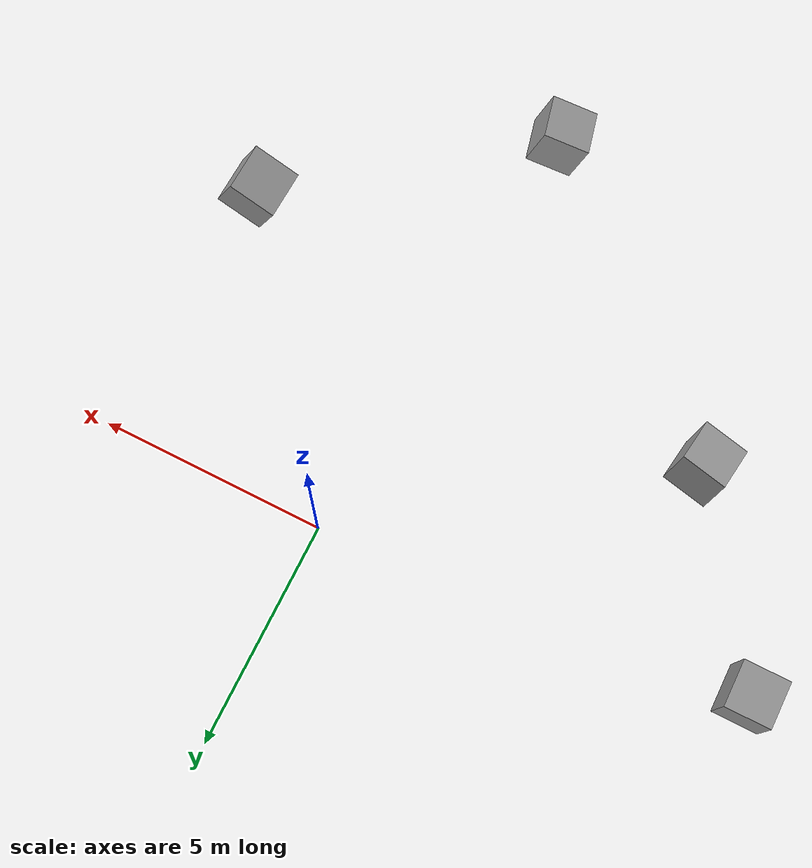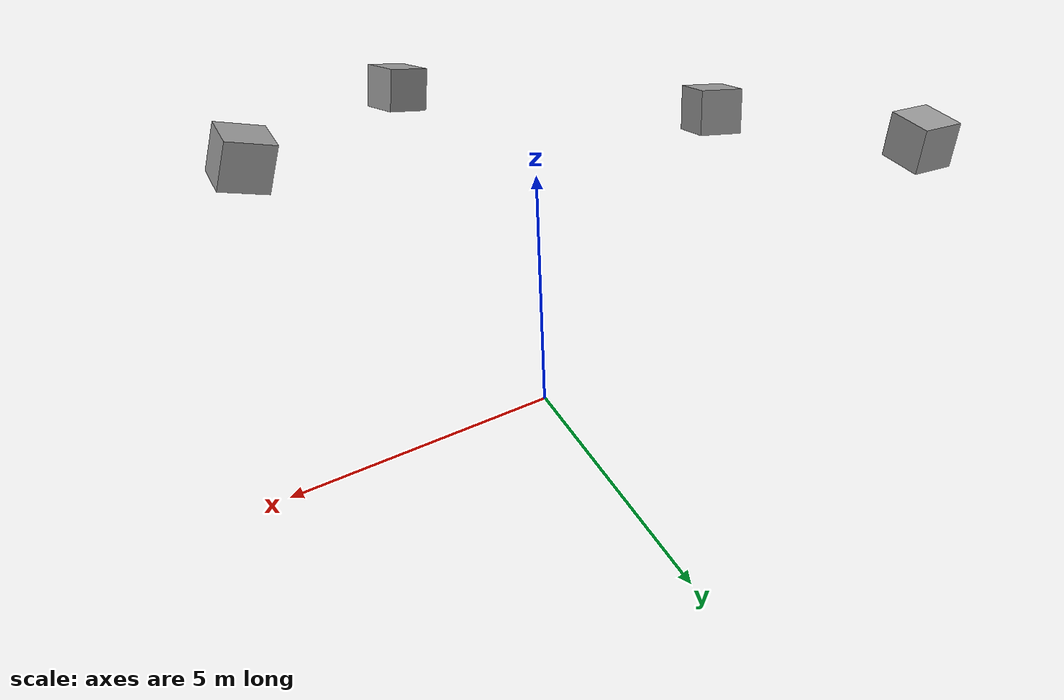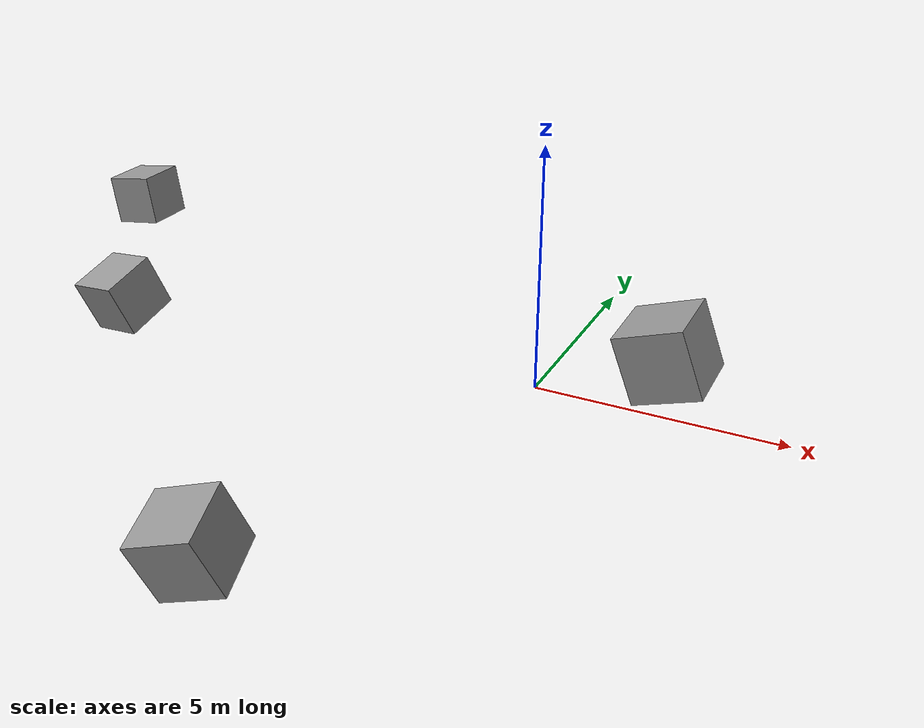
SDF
<sdf version="1.6">
 <world name="default">
  <light name="sun" type="directional">
   <pose>0 0 10 0 -0 0</pose>
   <diffuse>0.8 0.8 0.8 1</diffuse>
   <specular>0.2 0.2 0.2 1</specular>
   <attenuation>
    <range>1000</range>
    <constant>0.9</constant>
    <linear>0.01</linear>
    <quadratic>0.001</quadratic>
   </attenuation>
   <direction>-0.5 0.1 -0.9</direction>
  </light>
  <gravity>0 0 -9.8</gravity>
  <magnetic_field>6e-06 2.3e-05 -4.2e-05</magnetic_field>
  <atmosphere type="adiabatic"/>
  <physics name="default_physics" default="0" type="ode">
   <max_step_size>0.001</max_step_size>
   <real_time_factor>1</real_time_factor>
   <real_time_update_rate>1000</real_time_update_rate>
  </physics>
  <scene><ambient>0.4 0.4 0.4 1</ambient><background>0.7 0.7 0.7 1</background><shadows>1</shadows></scene>
  <audio><device>default</device></audio>
  <spherical_coordinates>
   <surface_model>EARTH_WGS84</surface_model>
   <latitude_deg>0</latitude_deg>
   <longitude_deg>0</longitude_deg>
   <elevation>0</elevation>
   <heading_deg>0</heading_deg>
  </spherical_coordinates>
  <model name="unit_box">
   <pose>3.7202 -4.92345 3.89335 0.227716 1.22186 0.177919</pose>
   <link name="link">
    <inertial>
     <mass>1</mass>
     <inertia>
      <ixx>0.166667</ixx>
      <ixy>0</ixy>
      <ixz>0</ixz>
      <iyy>0.166667</iyy>
      <iyz>0</iyz>
      <izz>0.166667</izz>
     </inertia>
    </inertial>
    <collision name="collision"><geometry><box><size>1 1 1</size></box></geometry></collision>
    <visual name="visual">
     <geometry><box><size>1 1 1</size></box></geometry>
     <material>
      <script><name>Gazebo/Grey</name><uri>file://media/materials/scripts/gazebo.material</uri></script>
     </material>
    </visual>
   </link>
  </model>
  <model name="unit_box_0">
   <pose>-0.958498 -9.29083 2.16166 0.639414 1.19608 0.850171</pose>
   <link name="link">
    <inertial>
     <mass>1</mass>
     <inertia>
      <ixx>0.166667</ixx>
      <ixy>0</ixy>
      <ixz>0</ixz>
      <iyy>0.166667</iyy>
      <iyz>0</iyz>
      <izz>0.166667</izz>
     </inertia>
    </inertial>
    <collision name="collision"><geometry><box><size>1 1 1</size></box></geometry></collision>
    <visual name="visual">
     <geometry><box><size>1 1 1</size></box></geometry>
     <material>
      <script><name>Gazebo/Grey</name><uri>file://media/materials/scripts/gazebo.material</uri></script>
     </material>
    </visual>
   </link>
  </model>
  <model name="unit_box_1">
   <pose>-6.55959 -4.20369 2.45095 1.901 -0.138138 -0.162796</pose>
   <link name="link">
    <inertial>
     <mass>1</mass>
     <inertia>
      <ixx>0.166667</ixx>
      <ixy>0</ixy>
      <ixz>0</ixz>
      <iyy>0.166667</iyy>
      <iyz>0</iyz>
      <izz>0.166667</izz>
     </inertia>
    </inertial>
    <collision name="collision"><geometry><box><size>1 1 1</size></box></geometry></collision>
    <visual name="visual">
     <geometry><box><size>1 1 1</size></box></geometry>
     <material>
      <script><name>Gazebo/Grey</name><uri>file://media/materials/scripts/gazebo.material</uri></script>
     </material>
    </visual>
   </link>
  </model>
  <model name="unit_box_2">
   <pose>-9.24625 -0.358143 2.82476 0.022829 -0.114824 0.024742</pose>
   <link name="link">
    <inertial>
     <mass>1</mass>
     <inertia>
      <ixx>0.166667</ixx>
      <ixy>0</ixy>
      <ixz>0</ixz>
      <iyy>0.166667</iyy>
      <iyz>0</iyz>
      <izz>0.166667</izz>
     </inertia>
    </inertial>
    <collision name="collision"><geometry><box><size>1 1 1</size></box></geometry></collision>
    <visual name="visual">
     <geometry><box><size>1 1 1</size></box></geometry>
     <material>
      <script><name>Gazebo/Grey</name><uri>file://media/materials/scripts/gazebo.material</uri></script>
     </material>
    </visual>
   </link>
  </model>
 </world>
</sdf>
